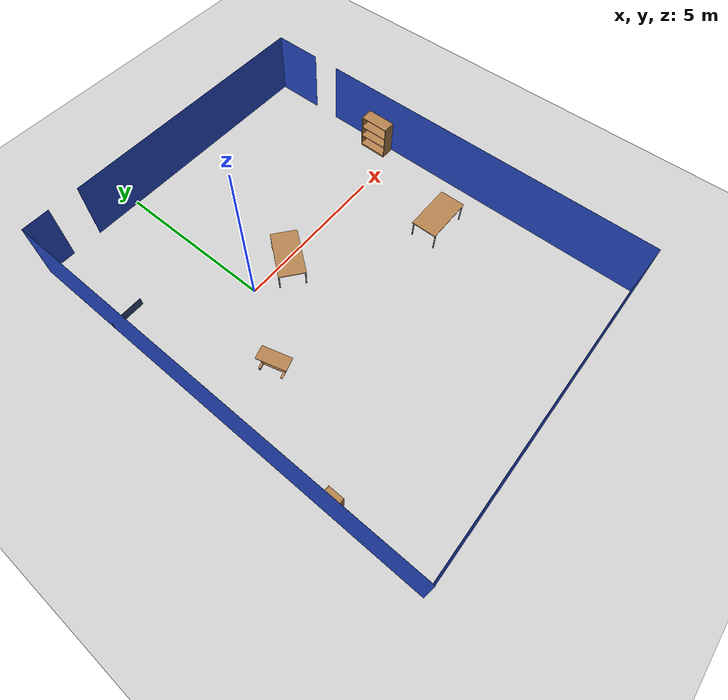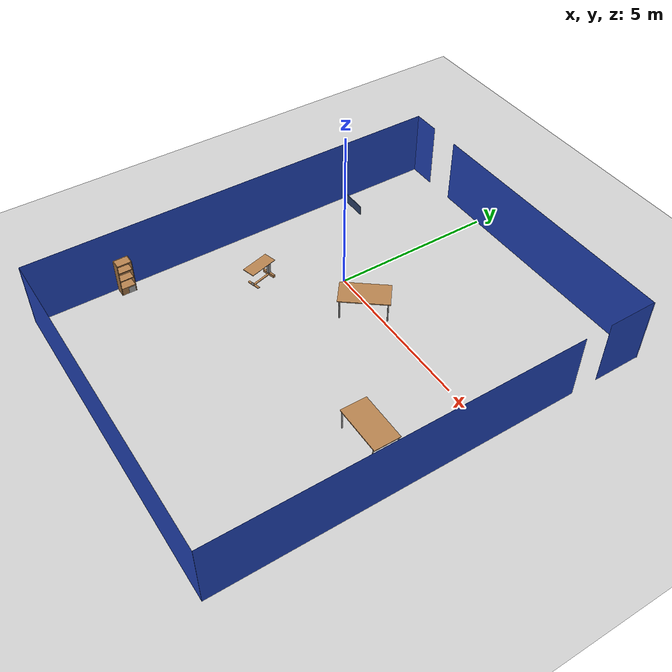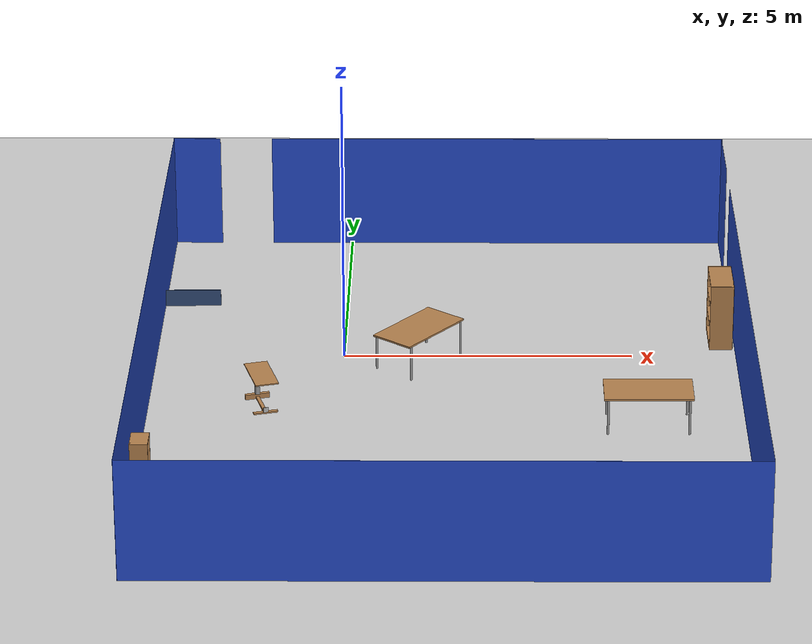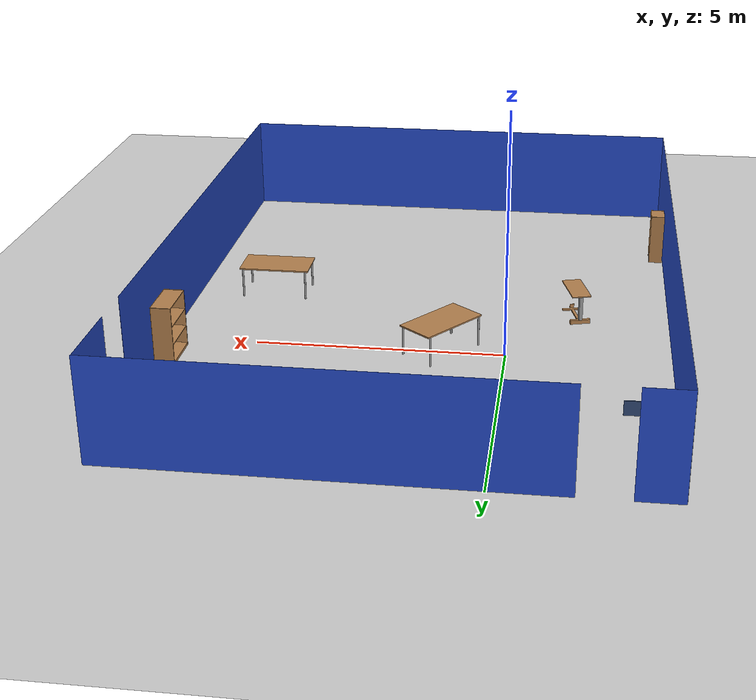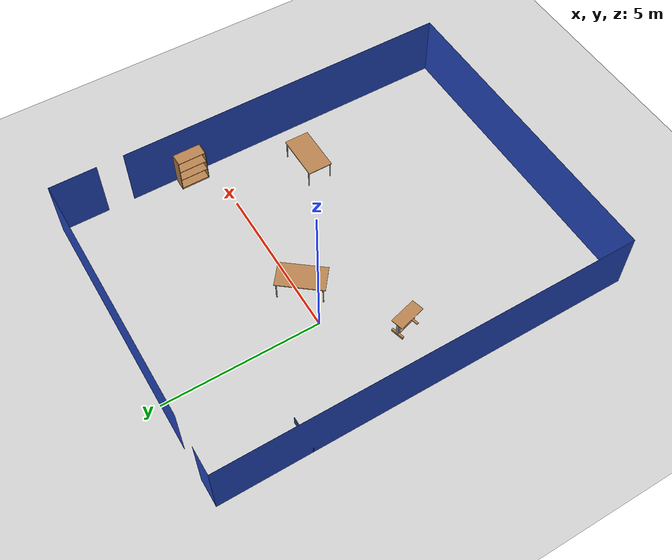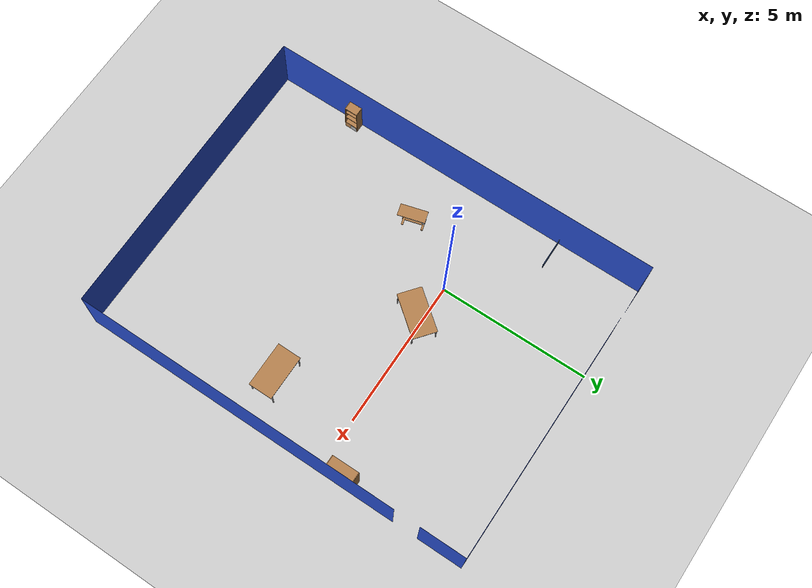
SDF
<sdf version="1.6">
 <world name="default">
  <model name="ground_plane">
   <static>1</static>
   <link name="link">
    <collision name="collision">
     <geometry><plane><normal>0 0 1</normal><size>100 100</size></plane></geometry>
     <surface><friction><ode><mu>100</mu><mu2>50</mu2></ode></friction></surface>
    </collision>
    <visual name="visual">
     <cast_shadows>0</cast_shadows>
     <geometry><plane><normal>0 0 1</normal><size>100 100</size></plane></geometry>
     <material>
      <script><uri>file://media/materials/scripts/gazebo.material</uri><name>Gazebo/Grey</name></script>
     </material>
    </visual>
   </link>
  </model>
  <model name="hcr_shefl_2">
   <link name="link">
    <inertial>
     <mass>5</mass>
     <inertia><ixx>1</ixx><ixy>0</ixy><ixz>0</ixz><iyy>1</iyy><iyz>0</iyz><izz>1</izz></inertia>
    </inertial>
    <visual name="left_board">
     <pose>-0.1475 0.009 -0.598 0 -0 0</pose>
     <geometry><box><size>0.295 0.018 1.196</size></box></geometry>
     <material>
      <script><uri>model://base_materials/wood/scripts/wood.material</uri><name>base_materials/wood</name></script>
     </material>
    </visual>
    <collision name="collision_left_board">
     <pose>-0.1475 0.009 -0.598 0 -0 0</pose>
     <geometry><box><size>0.295 0.018 1.196</size></box></geometry>
    </collision>
    <visual name="right_board">
     <pose>-0.1475 0.441 -0.598 0 -0 0</pose>
     <geometry><box><size>0.295 0.018 1.196</size></box></geometry>
     <material>
      <script><uri>model://base_materials/wood/scripts/wood.material</uri><name>base_materials/wood</name></script>
     </material>
    </visual>
    <collision name="collision_right_board">
     <pose>-0.1475 0.441 -0.598 0 -0 0</pose>
     <geometry><box><size>0.295 0.018 1.196</size></box></geometry>
    </collision>
    <visual name="top_board">
     <pose>-0.1475 0.225 -0.0175 0 -0 0</pose>
     <geometry><box><size>0.295 0.414 0.035</size></box></geometry>
     <material>
      <script><uri>model://base_materials/wood/scripts/wood.material</uri><name>base_materials/wood</name></script>
     </material>
    </visual>
    <collision name="collision_top_board">
     <pose>-0.1475 0.225 -0.0175 0 -0 0</pose>
     <geometry><box><size>0.295 0.414 0.035</size></box></geometry>
    </collision>
    <visual name="1st_shelf">
     <pose>-0.162 0.225 -0.311 0 -0 0</pose>
     <geometry><box><size>0.266 0.414 0.018</size></box></geometry>
     <material>
      <script><uri>model://base_materials/wood/scripts/wood.material</uri><name>base_materials/wood</name></script>
     </material>
    </visual>
    <collision name="collision_1st_shelf">
     <pose>-0.162 0.225 -0.311 0 -0 0</pose>
     <geometry><box><size>0.266 0.414 0.018</size></box></geometry>
    </collision>
    <visual name="2nd_shelf">
     <pose>-0.162 0.225 -0.613 0 -0 0</pose>
     <geometry><box><size>0.266 0.414 0.018</size></box></geometry>
     <material>
      <script><uri>model://base_materials/wood/scripts/wood.material</uri><name>base_materials/wood</name></script>
     </material>
    </visual>
    <collision name="collision_2nd_shelf">
     <pose>-0.162 0.225 -0.613 0 -0 0</pose>
     <geometry><box><size>0.266 0.414 0.018</size></box></geometry>
    </collision>
    <visual name="bottom_board">
     <pose>-0.1475 0.225 -1.0335 0 -0 0</pose>
     <geometry><box><size>0.295 0.414 0.325</size></box></geometry>
     <material>
      <script><uri>model://base_materials/wood/scripts/wood.material</uri><name>base_materials/wood</name></script>
     </material>
    </visual>
    <collision name="collision_bottom_board">
     <pose>-0.1475 0.225 -1.0335 0 -0 0</pose>
     <geometry><box><size>0.295 0.414 0.325</size></box></geometry>
    </collision>
    <visual name="back_board">
     <pose>-0.286 0.225 -0.598 0 -0 0</pose>
     <geometry><box><size>0.018 0.414 1.196</size></box></geometry>
     <material>
      <script><uri>model://base_materials/wood/scripts/wood.material</uri><name>base_materials/wood</name></script>
     </material>
    </visual>
    <collision name="collision_back_board">
     <pose>-0.286 0.225 -0.598 0 -0 0</pose>
     <geometry><box><size>0.018 0.414 1.196</size></box></geometry>
    </collision>
    <visual name="marker_0030">
     <pose>0 0.32 -1.015 0 -0 0</pose>
     <geometry><box><size>0.0001 0.21 0.21</size></box></geometry>
     <material>
      <script>
       <uri>model://hcr_shelf_2/marker/0030/scripts</uri>
       <uri>model://hcr_shelf_2/marker/0030/textures</uri>
       <name>Marker/0030</name>
      </script>
     </material>
    </visual>
    <collision name="collision_marker_0030">
     <pose>0 0.32 -1.015 0 -0 0</pose>
     <geometry><box><size>0.0001 0.21 0.21</size></box></geometry>
    </collision>
    <velocity_decay><linear>0</linear><angular>0</angular></velocity_decay>
   </link>
   <static>1</static>
   <pose>-2.96206 -5.70339 1.09688 0 -0 0</pose>
  </model>
  <model name="table">
   <static>1</static>
   <link name="link">
    <collision name="surface">
     <pose>0 0 1 0 -0 0</pose>
     <geometry><box><size>1.5 0.8 0.03</size></box></geometry>
     <surface><friction><ode><mu>0.6</mu><mu2>0.6</mu2></ode></friction></surface>
    </collision>
    <visual name="visual1">
     <pose>0 0 1 0 -0 0</pose>
     <geometry><box><size>1.5 0.8 0.03</size></box></geometry>
     <material>
      <script><uri>file://media/materials/scripts/gazebo.material</uri><name>Gazebo/Wood</name></script>
     </material>
    </visual>
    <collision name="front_left_leg">
     <pose>0.68 0.38 0.5 0 -0 0</pose>
     <geometry><cylinder><radius>0.02</radius><length>1</length></cylinder></geometry>
    </collision>
    <visual name="front_left_leg">
     <pose>0.68 0.38 0.5 0 -0 0</pose>
     <geometry><cylinder><radius>0.02</radius><length>1</length></cylinder></geometry>
     <material>
      <script><uri>file://media/materials/scripts/gazebo.material</uri><name>Gazebo/Grey</name></script>
     </material>
    </visual>
    <collision name="front_right_leg">
     <pose>0.68 -0.38 0.5 0 -0 0</pose>
     <geometry><cylinder><radius>0.02</radius><length>1</length></cylinder></geometry>
    </collision>
    <visual name="front_right_leg">
     <pose>0.68 -0.38 0.5 0 -0 0</pose>
     <geometry><cylinder><radius>0.02</radius><length>1</length></cylinder></geometry>
     <material>
      <script><uri>file://media/materials/scripts/gazebo.material</uri><name>Gazebo/Grey</name></script>
     </material>
    </visual>
    <collision name="back_right_leg">
     <pose>-0.68 -0.38 0.5 0 -0 0</pose>
     <geometry><cylinder><radius>0.02</radius><length>1</length></cylinder></geometry>
    </collision>
    <visual name="back_right_leg">
     <pose>-0.68 -0.38 0.5 0 -0 0</pose>
     <geometry><cylinder><radius>0.02</radius><length>1</length></cylinder></geometry>
     <material>
      <script><uri>file://media/materials/scripts/gazebo.material</uri><name>Gazebo/Grey</name></script>
     </material>
    </visual>
    <collision name="back_left_leg">
     <pose>-0.68 0.38 0.5 0 -0 0</pose>
     <geometry><cylinder><radius>0.02</radius><length>1</length></cylinder></geometry>
    </collision>
    <visual name="back_left_leg">
     <pose>-0.68 0.38 0.5 0 -0 0</pose>
     <geometry><cylinder><radius>0.02</radius><length>1</length></cylinder></geometry>
     <material>
      <script><uri>file://media/materials/scripts/gazebo.material</uri><name>Gazebo/Grey</name></script>
     </material>
    </visual>
   </link>
   <pose>1.2942 -0.166561 -0.380127 0 -0 0.901313</pose>
  </model>
  <model name="bookshelf_clone_0">
   <static>1</static>
   <link name="link">
    <inertial><mass>1</mass></inertial>
    <collision name="back">
     <pose>0 0.005 0.6 0 -0 0</pose>
     <geometry><box><size>0.9 0.01 1.2</size></box></geometry>
    </collision>
    <visual name="visual1">
     <pose>0 0.005 0.6 0 -0 0</pose>
     <geometry><box><size>0.9 0.01 1.2</size></box></geometry>
     <material>
      <script><uri>file://media/materials/scripts/gazebo.material</uri><name>Gazebo/Wood</name></script>
     </material>
    </visual>
    <collision name="left_side">
     <pose>0.45 -0.195 0.6 0 -0 0</pose>
     <geometry><box><size>0.02 0.4 1.2</size></box></geometry>
    </collision>
    <visual name="visual2">
     <pose>0.45 -0.195 0.6 0 -0 0</pose>
     <geometry><box><size>0.02 0.4 1.2</size></box></geometry>
     <material>
      <script><uri>file://media/materials/scripts/gazebo.material</uri><name>Gazebo/Wood</name></script>
     </material>
    </visual>
    <collision name="right_side">
     <pose>-0.45 -0.195 0.6 0 -0 0</pose>
     <geometry><box><size>0.02 0.4 1.2</size></box></geometry>
    </collision>
    <visual name="visual3">
     <pose>-0.45 -0.195 0.6 0 -0 0</pose>
     <geometry><box><size>0.02 0.4 1.2</size></box></geometry>
     <material>
      <script><uri>file://media/materials/scripts/gazebo.material</uri><name>Gazebo/Wood</name></script>
     </material>
    </visual>
    <collision name="bottom">
     <pose>0 -0.195 0.03 0 -0 0</pose>
     <geometry><box><size>0.88 0.4 0.06</size></box></geometry>
    </collision>
    <visual name="visual4">
     <pose>0 -0.195 0.03 0 -0 0</pose>
     <geometry><box><size>0.88 0.4 0.06</size></box></geometry>
     <material>
      <script><uri>file://media/materials/scripts/gazebo.material</uri><name>Gazebo/Wood</name></script>
     </material>
    </visual>
    <collision name="top">
     <pose>0 -0.195 1.19 0 -0 0</pose>
     <geometry><box><size>0.88 0.4 0.02</size></box></geometry>
    </collision>
    <visual name="visual5">
     <pose>0 -0.195 1.19 0 -0 0</pose>
     <geometry><box><size>0.88 0.4 0.02</size></box></geometry>
     <material>
      <script><uri>file://media/materials/scripts/gazebo.material</uri><name>Gazebo/Wood</name></script>
     </material>
    </visual>
    <collision name="low_shelf">
     <pose>0 -0.195 0.43 0 -0 0</pose>
     <geometry><box><size>0.88 0.4 0.02</size></box></geometry>
    </collision>
    <visual name="visual6">
     <pose>0 -0.195 0.43 0 -0 0</pose>
     <geometry><box><size>0.88 0.4 0.02</size></box></geometry>
     <material>
      <script><uri>file://media/materials/scripts/gazebo.material</uri><name>Gazebo/Wood</name></script>
     </material>
    </visual>
    <collision name="high_shelf">
     <pose>0 -0.195 0.8 0 -0 0</pose>
     <geometry><box><size>0.88 0.4 0.02</size></box></geometry>
    </collision>
    <visual name="visual7">
     <pose>0 -0.195 0.8 0 -0 0</pose>
     <geometry><box><size>0.88 0.4 0.02</size></box></geometry>
     <material>
      <script><uri>file://media/materials/scripts/gazebo.material</uri><name>Gazebo/Wood</name></script>
     </material>
    </visual>
   </link>
   <pose>6.75738 0.730992 0 0 0 -1.5707</pose>
  </model>
  <model name="table_clone">
   <static>1</static>
   <link name="link">
    <collision name="surface">
     <pose>0 0 1 0 -0 0</pose>
     <geometry><box><size>1.5 0.8 0.03</size></box></geometry>
     <surface><friction><ode><mu>0.6</mu><mu2>0.6</mu2></ode></friction></surface>
    </collision>
    <visual name="visual1">
     <pose>0 0 1 0 -0 0</pose>
     <geometry><box><size>1.5 0.8 0.03</size></box></geometry>
     <material>
      <script><uri>file://media/materials/scripts/gazebo.material</uri><name>Gazebo/Wood</name></script>
     </material>
    </visual>
    <collision name="front_left_leg">
     <pose>0.68 0.38 0.5 0 -0 0</pose>
     <geometry><cylinder><radius>0.02</radius><length>1</length></cylinder></geometry>
    </collision>
    <visual name="front_left_leg">
     <pose>0.68 0.38 0.5 0 -0 0</pose>
     <geometry><cylinder><radius>0.02</radius><length>1</length></cylinder></geometry>
     <material>
      <script><uri>file://media/materials/scripts/gazebo.material</uri><name>Gazebo/Grey</name></script>
     </material>
    </visual>
    <collision name="front_right_leg">
     <pose>0.68 -0.38 0.5 0 -0 0</pose>
     <geometry><cylinder><radius>0.02</radius><length>1</length></cylinder></geometry>
    </collision>
    <visual name="front_right_leg">
     <pose>0.68 -0.38 0.5 0 -0 0</pose>
     <geometry><cylinder><radius>0.02</radius><length>1</length></cylinder></geometry>
     <material>
      <script><uri>file://media/materials/scripts/gazebo.material</uri><name>Gazebo/Grey</name></script>
     </material>
    </visual>
    <collision name="back_right_leg">
     <pose>-0.68 -0.38 0.5 0 -0 0</pose>
     <geometry><cylinder><radius>0.02</radius><length>1</length></cylinder></geometry>
    </collision>
    <visual name="back_right_leg">
     <pose>-0.68 -0.38 0.5 0 -0 0</pose>
     <geometry><cylinder><radius>0.02</radius><length>1</length></cylinder></geometry>
     <material>
      <script><uri>file://media/materials/scripts/gazebo.material</uri><name>Gazebo/Grey</name></script>
     </material>
    </visual>
    <collision name="back_left_leg">
     <pose>-0.68 0.38 0.5 0 -0 0</pose>
     <geometry><cylinder><radius>0.02</radius><length>1</length></cylinder></geometry>
    </collision>
    <visual name="back_left_leg">
     <pose>-0.68 0.38 0.5 0 -0 0</pose>
     <geometry><cylinder><radius>0.02</radius><length>1</length></cylinder></geometry>
     <material>
      <script><uri>file://media/materials/scripts/gazebo.material</uri><name>Gazebo/Grey</name></script>
     </material>
    </visual>
   </link>
   <pose>5.16052 -2.64347 -0.380127 0 -0 0</pose>
  </model>
  <model name="bed_table">
   <link name="link">
    <inertial>
     <pose>0 0.449 0.001 0 -0 0</pose>
     <mass>10</mass>
     <inertia><ixx>1</ixx><ixy>0</ixy><ixz>0</ixz><iyy>1</iyy><iyz>0</iyz><izz>1</izz></inertia>
    </inertial>
    <visual name="top_board">
     <pose>0 0.449 0.625 0 -0 0</pose>
     <geometry><box><size>0.398 0.898 0.02</size></box></geometry>
     <material>
      <script><uri>model://base_materials/wood/scripts/wood.material</uri><name>base_materials/wood</name></script>
     </material>
    </visual>
    <collision name="collision_top_board">
     <pose>0 0.449 0.625 0 -0 0</pose>
     <geometry><box><size>0.398 0.898 0.02</size></box></geometry>
    </collision>
    <visual name="right_pole">
     <pose>0 0.817 0.3515 0 -0 0</pose>
     <geometry><box><size>0.072 0.094 0.527</size></box></geometry>
     <material>
      <script><uri>model://base_materials/color/scripts</uri><name>hsr_color/grey</name></script>
     </material>
    </visual>
    <collision name="collision_right_pole">
     <pose>0 0.817 0.3515 0 -0 0</pose>
     <geometry><box><size>0.072 0.094 0.527</size></box></geometry>
    </collision>
    <visual name="right_bottom_pole">
     <pose>0 0.8225 0.044 0 -0 0</pose>
     <geometry><box><size>0.42 0.063 0.088</size></box></geometry>
     <material>
      <script><uri>model://base_materials/wood/scripts/wood.material</uri><name>base_materials/wood</name></script>
     </material>
    </visual>
    <collision name="collision_right_bottom_pole">
     <pose>0 0.8225 0.044 0 -0 0</pose>
     <geometry><box><size>0.42 0.063 0.088</size></box></geometry>
    </collision>
    <visual name="bottom_center_pole">
     <pose>0 0.502 0.03 0 -0 0</pose>
     <geometry><box><size>0.06 0.578 0.03</size></box></geometry>
     <material>
      <script><uri>model://base_materials/wood/scripts/wood.material</uri><name>base_materials/wood</name></script>
     </material>
    </visual>
    <collision name="collision_bottom_center_pole">
     <pose>0 0.502 0.03 0 -0 0</pose>
     <geometry><box><size>0.06 0.578 0.03</size></box></geometry>
    </collision>
    <visual name="left_bottom_pole">
     <pose>0 0.18 0.0325 0 -0 0</pose>
     <geometry><box><size>0.418 0.066 0.025</size></box></geometry>
     <material>
      <script><uri>model://base_materials/wood/scripts/wood.material</uri><name>base_materials/wood</name></script>
     </material>
    </visual>
    <collision name="collision_left_bottom_pole">
     <pose>0 0.18 0.0325 0 -0 0</pose>
     <geometry><box><size>0.418 0.066 0.025</size></box></geometry>
    </collision>
    <visual name="marker_0010">
     <pose>0 0.14 0.093 0 -0 0</pose>
     <geometry><box><size>0.09 0.001 0.09</size></box></geometry>
     <material>
      <script>
       <uri>model://bed_table/marker/0010/scripts</uri>
       <uri>model://bed_table/marker/0010/textures</uri>
       <name>Marker/0010</name>
      </script>
     </material>
    </visual>
    <collision name="collision_marker_0010">
     <pose>0 0.14 0.093 0 -0 0</pose>
     <geometry><box><size>0.09 0.001 0.09</size></box></geometry>
    </collision>
    <visual name="marker_0010_back_plate">
     <pose>0 0.146 0.093 0 -0 0</pose>
     <geometry><box><size>0.09 0.01 0.09</size></box></geometry>
     <material>
      <script><uri>model://base_materials/wood/scripts/wood.material</uri><name>base_materials/wood</name></script>
     </material>
    </visual>
    <collision name="collision_marker_0010_back_plate">
     <pose>0 0.146 0.093 0 -0 0</pose>
     <geometry><box><size>0.09 0.01 0.09</size></box></geometry>
    </collision>
    <velocity_decay><linear>0</linear><angular>0</angular></velocity_decay>
   </link>
   <static>1</static>
   <pose>-1.21832 -2.49117 0 0 -0 0.272851</pose>
  </model>
  <model name="low_wall_0">
   <link name="link">
    <inertial>
     <mass>50</mass>
     <inertia><ixx>1</ixx><ixy>0</ixy><ixz>0</ixz><iyy>1</iyy><iyz>0</iyz><izz>1</izz></inertia>
    </inertial>
    <visual name="wall">
     <pose>0 0 0.15 0 -0 0</pose>
     <geometry><box><size>0.02 1 0.3</size></box></geometry>
     <material>
      <ambient>0.392 0.584 0.929 1</ambient>
      <diffuse>0.196 0.292 0.4645 1</diffuse>
      <specular>0 0 0 1</specular>
     </material>
    </visual>
    <collision name="collision_wall">
     <pose>0 0 0.15 0 -0 0</pose>
     <geometry><box><size>0.02 1 0.3</size></box></geometry>
    </collision>
    <velocity_decay><linear>0</linear><angular>0</angular></velocity_decay>
   </link>
   <static>1</static>
   <pose>-2.78049 2.12275 0 0 0 -1.56043</pose>
  </model>
  <model name="apartment_wall_collision">
   <link name="link">
    <inertial>
     <mass>50</mass>
     <inertia><ixx>1</ixx><ixy>0</ixy><ixz>0</ixz><iyy>1</iyy><iyz>0</iyz><izz>1</izz></inertia>
    </inertial>
    <velocity_decay><linear>0</linear><angular>0</angular></velocity_decay>
    <visual name="wall_x00y00_x00y15">
     <pose>-0.002 6.59 1.04 0 -0 0</pose>
     <geometry><box><size>0.002 13.2 2.08</size></box></geometry>
     <material>
      <script>
       <uri>model://base_materials/color/scripts</uri>
       <name>hsr_color/cornflowerblue_transparency1</name>
      </script>
      <shader type="pixel"><normal_map>__default__</normal_map></shader>
      <ambient>0.392 0.584 0.929 1</ambient>
      <diffuse>0.196 0.292 0.465 1</diffuse>
      <specular>0 0 0 1</specular>
      <emissive>0 0 0 1</emissive>
     </material>
    </visual>
    <visual name="wall_x00y00_x13y00">
     <pose>5.0375 -0.002 1.04 0 -0 0</pose>
     <geometry><box><size>10.08 0.002 2.08</size></box></geometry>
     <material>
      <script>
       <uri>model://base_materials/color/scripts</uri>
       <name>hsr_color/cornflowerblue_transparency1</name>
      </script>
      <shader type="pixel"><normal_map>__default__</normal_map></shader>
      <ambient>0.392 0.584 0.929 1</ambient>
      <diffuse>0.196 0.292 0.465 1</diffuse>
      <specular>0 0 0 1</specular>
      <emissive>0 0 0 1</emissive>
     </material>
    </visual>
    <visual name="wall_x13y00_x13y12">
     <pose>10.077 5.42 1.04 0 -0 0</pose>
     <geometry><box><size>0.002 10.84 2.08</size></box></geometry>
     <material>
      <script>
       <uri>model://base_materials/color/scripts</uri>
       <name>hsr_color/cornflowerblue_transparency1</name>
      </script>
      <shader type="pixel"><normal_map>__default__</normal_map></shader>
      <ambient>0.392 0.584 0.929 1</ambient>
      <diffuse>0.196 0.292 0.465 1</diffuse>
      <specular>0 0 0 1</specular>
      <emissive>0 0 0 1</emissive>
     </material>
    </visual>
    <visual name="wall_x13y14_x13y16">
     <pose>10.077 12.43 1.04 0 -0 0</pose>
     <geometry><box><size>0.002 1.5 2.08</size></box></geometry>
     <material>
      <script>
       <uri>model://base_materials/color/scripts</uri>
       <name>hsr_color/cornflowerblue_transparency1</name>
      </script>
      <shader type="pixel"><normal_map>__default__</normal_map></shader>
      <ambient>0.392 0.584 0.929 1</ambient>
      <diffuse>0.196 0.292 0.465 1</diffuse>
      <specular>0 0 0 1</specular>
      <emissive>0 0 0 1</emissive>
     </material>
    </visual>
    <visual name="wall_x00y16_x01y16">
     <pose>0.4225 13.182 1.04 0 -0 0</pose>
     <geometry><box><size>0.854 0.002 2.08</size></box></geometry>
     <material>
      <script>
       <uri>model://base_materials/color/scripts</uri>
       <name>hsr_color/cornflowerblue_transparency1</name>
      </script>
      <shader type="pixel"><normal_map>__default__</normal_map></shader>
      <ambient>0.392 0.584 0.929 1</ambient>
      <diffuse>0.196 0.292 0.465 1</diffuse>
      <specular>0 0 0 1</specular>
      <emissive>0 0 0 1</emissive>
     </material>
    </visual>
    <visual name="wall_x03y16_x13y16">
     <pose>5.948 13.182 1.04 0 -0 0</pose>
     <geometry><box><size>8.3 0.002 2.08</size></box></geometry>
     <material>
      <script>
       <uri>model://base_materials/color/scripts</uri>
       <name>hsr_color/cornflowerblue_transparency1</name>
      </script>
      <shader type="pixel"><normal_map>__default__</normal_map></shader>
      <ambient>0.392 0.584 0.929 1</ambient>
      <diffuse>0.196 0.292 0.465 1</diffuse>
      <specular>0 0 0 1</specular>
      <emissive>0 0 0 1</emissive>
     </material>
    </visual>
    <collision name="wall_x00y00_x00y15">
     <pose>-0.002 6.59 1.04 0 -0 0</pose>
     <geometry><box><size>0.002 13.2 2.08</size></box></geometry>
     <surface>
      <friction>
       <ode><mu>1</mu><mu2>1</mu2><fdir1>0 0 0</fdir1><slip1>0</slip1><slip2>0</slip2></ode>
       <torsional>
        <coefficient>1</coefficient>
        <patch_radius>0</patch_radius>
        <surface_radius>0</surface_radius>
        <use_patch_radius>1</use_patch_radius>
        <ode><slip>0</slip></ode>
       </torsional>
      </friction>
      <bounce><restitution_coefficient>0</restitution_coefficient><threshold>1e+06</threshold></bounce>
      <contact>
       <collide_without_contact>0</collide_without_contact>
       <collide_without_contact_bitmask>1</collide_without_contact_bitmask>
       <collide_bitmask>1</collide_bitmask>
       <ode>
        <soft_cfm>0</soft_cfm>
        <soft_erp>0.2</soft_erp>
        <kp>1e+13</kp>
        <kd>1</kd>
        <max_vel>0.01</max_vel>
        <min_depth>0</min_depth>
       </ode>
       <bullet>
        <split_impulse>1</split_impulse>
        <split_impulse_penetration_threshold>-0.01</split_impulse_penetration_threshold>
        <soft_cfm>0</soft_cfm>
        <soft_erp>0.2</soft_erp>
        <kp>1e+13</kp>
        <kd>1</kd>
       </bullet>
      </contact>
     </surface>
    </collision>
    <collision name="wall_x00y00_x13y00">
     <pose>5.0375 -0.002 1.04 0 -0 0</pose>
     <geometry><box><size>10.08 0.002 2.08</size></box></geometry>
     <surface>
      <friction>
       <ode><mu>1</mu><mu2>1</mu2><fdir1>0 0 0</fdir1><slip1>0</slip1><slip2>0</slip2></ode>
       <torsional>
        <coefficient>1</coefficient>
        <patch_radius>0</patch_radius>
        <surface_radius>0</surface_radius>
        <use_patch_radius>1</use_patch_radius>
        <ode><slip>0</slip></ode>
       </torsional>
      </friction>
      <bounce><restitution_coefficient>0</restitution_coefficient><threshold>1e+06</threshold></bounce>
      <contact>
       <collide_without_contact>0</collide_without_contact>
       <collide_without_contact_bitmask>1</collide_without_contact_bitmask>
       <collide_bitmask>1</collide_bitmask>
       <ode>
        <soft_cfm>0</soft_cfm>
        <soft_erp>0.2</soft_erp>
        <kp>1e+13</kp>
        <kd>1</kd>
        <max_vel>0.01</max_vel>
        <min_depth>0</min_depth>
       </ode>
       <bullet>
        <split_impulse>1</split_impulse>
        <split_impulse_penetration_threshold>-0.01</split_impulse_penetration_threshold>
        <soft_cfm>0</soft_cfm>
        <soft_erp>0.2</soft_erp>
        <kp>1e+13</kp>
        <kd>1</kd>
       </bullet>
      </contact>
     </surface>
    </collision>
    <collision name="wall_x13y00_x13y12">
     <pose>10.077 5.42 1.04 0 -0 0</pose>
     <geometry><box><size>0.002 10.84 2.08</size></box></geometry>
     <surface>
      <friction>
       <ode><mu>1</mu><mu2>1</mu2><fdir1>0 0 0</fdir1><slip1>0</slip1><slip2>0</slip2></ode>
       <torsional>
        <coefficient>1</coefficient>
        <patch_radius>0</patch_radius>
        <surface_radius>0</surface_radius>
        <use_patch_radius>1</use_patch_radius>
        <ode><slip>0</slip></ode>
       </torsional>
      </friction>
      <bounce><restitution_coefficient>0</restitution_coefficient><threshold>1e+06</threshold></bounce>
      <contact>
       <collide_without_contact>0</collide_without_contact>
       <collide_without_contact_bitmask>1</collide_without_contact_bitmask>
       <collide_bitmask>1</collide_bitmask>
       <ode>
        <soft_cfm>0</soft_cfm>
        <soft_erp>0.2</soft_erp>
        <kp>1e+13</kp>
        <kd>1</kd>
        <max_vel>0.01</max_vel>
        <min_depth>0</min_depth>
       </ode>
       <bullet>
        <split_impulse>1</split_impulse>
        <split_impulse_penetration_threshold>-0.01</split_impulse_penetration_threshold>
        <soft_cfm>0</soft_cfm>
        <soft_erp>0.2</soft_erp>
        <kp>1e+13</kp>
        <kd>1</kd>
       </bullet>
      </contact>
     </surface>
    </collision>
    <collision name="wall_x13y14_x13y16">
     <pose>10.077 12.43 1.04 0 -0 0</pose>
     <geometry><box><size>0.002 1.5 2.08</size></box></geometry>
     <surface>
      <friction>
       <ode><mu>1</mu><mu2>1</mu2><fdir1>0 0 0</fdir1><slip1>0</slip1><slip2>0</slip2></ode>
       <torsional>
        <coefficient>1</coefficient>
        <patch_radius>0</patch_radius>
        <surface_radius>0</surface_radius>
        <use_patch_radius>1</use_patch_radius>
        <ode><slip>0</slip></ode>
       </torsional>
      </friction>
      <bounce><restitution_coefficient>0</restitution_coefficient><threshold>1e+06</threshold></bounce>
      <contact>
       <collide_without_contact>0</collide_without_contact>
       <collide_without_contact_bitmask>1</collide_without_contact_bitmask>
       <collide_bitmask>1</collide_bitmask>
       <ode>
        <soft_cfm>0</soft_cfm>
        <soft_erp>0.2</soft_erp>
        <kp>1e+13</kp>
        <kd>1</kd>
        <max_vel>0.01</max_vel>
        <min_depth>0</min_depth>
       </ode>
       <bullet>
        <split_impulse>1</split_impulse>
        <split_impulse_penetration_threshold>-0.01</split_impulse_penetration_threshold>
        <soft_cfm>0</soft_cfm>
        <soft_erp>0.2</soft_erp>
        <kp>1e+13</kp>
        <kd>1</kd>
       </bullet>
      </contact>
     </surface>
    </collision>
    <collision name="wall_x00y16_x01y16">
     <pose>0.4225 13.182 1.04 0 -0 0</pose>
     <geometry><box><size>0.854 0.002 2.08</size></box></geometry>
     <surface>
      <friction>
       <ode><mu>1</mu><mu2>1</mu2><fdir1>0 0 0</fdir1><slip1>0</slip1><slip2>0</slip2></ode>
       <torsional>
        <coefficient>1</coefficient>
        <patch_radius>0</patch_radius>
        <surface_radius>0</surface_radius>
        <use_patch_radius>1</use_patch_radius>
        <ode><slip>0</slip></ode>
       </torsional>
      </friction>
      <bounce><restitution_coefficient>0</restitution_coefficient><threshold>1e+06</threshold></bounce>
      <contact>
       <collide_without_contact>0</collide_without_contact>
       <collide_without_contact_bitmask>1</collide_without_contact_bitmask>
       <collide_bitmask>1</collide_bitmask>
       <ode>
        <soft_cfm>0</soft_cfm>
        <soft_erp>0.2</soft_erp>
        <kp>1e+13</kp>
        <kd>1</kd>
        <max_vel>0.01</max_vel>
        <min_depth>0</min_depth>
       </ode>
       <bullet>
        <split_impulse>1</split_impulse>
        <split_impulse_penetration_threshold>-0.01</split_impulse_penetration_threshold>
        <soft_cfm>0</soft_cfm>
        <soft_erp>0.2</soft_erp>
        <kp>1e+13</kp>
        <kd>1</kd>
       </bullet>
      </contact>
     </surface>
    </collision>
    <collision name="wall_x03y16_x13y16">
     <pose>5.948 13.182 1.04 0 -0 0</pose>
     <geometry><box><size>8.3 0.002 2.08</size></box></geometry>
     <surface>
      <friction>
       <ode><mu>1</mu><mu2>1</mu2><fdir1>0 0 0</fdir1><slip1>0</slip1><slip2>0</slip2></ode>
       <torsional>
        <coefficient>1</coefficient>
        <patch_radius>0</patch_radius>
        <surface_radius>0</surface_radius>
        <use_patch_radius>1</use_patch_radius>
        <ode><slip>0</slip></ode>
       </torsional>
      </friction>
      <bounce><restitution_coefficient>0</restitution_coefficient><threshold>1e+06</threshold></bounce>
      <contact>
       <collide_without_contact>0</collide_without_contact>
       <collide_without_contact_bitmask>1</collide_without_contact_bitmask>
       <collide_bitmask>1</collide_bitmask>
       <ode>
        <soft_cfm>0</soft_cfm>
        <soft_erp>0.2</soft_erp>
        <kp>1e+13</kp>
        <kd>1</kd>
        <max_vel>0.01</max_vel>
        <min_depth>0</min_depth>
       </ode>
       <bullet>
        <split_impulse>1</split_impulse>
        <split_impulse_penetration_threshold>-0.01</split_impulse_penetration_threshold>
        <soft_cfm>0</soft_cfm>
        <soft_erp>0.2</soft_erp>
        <kp>1e+13</kp>
        <kd>1</kd>
       </bullet>
      </contact>
     </surface>
    </collision>
   </link>
   <static>1</static>
   <pose>-3.26861 -8.19915 0 0 -0 0</pose>
  </model>
 </world>
</sdf>
